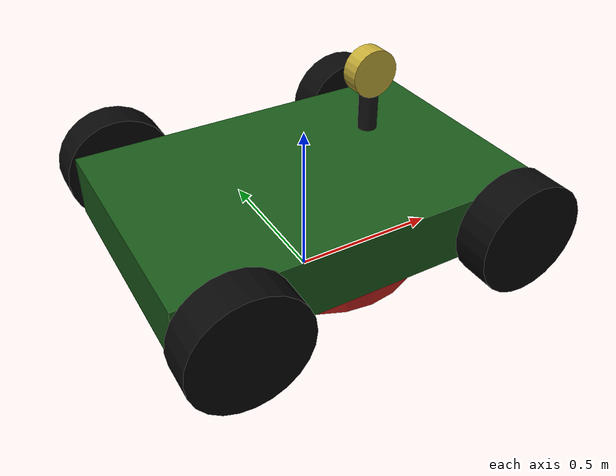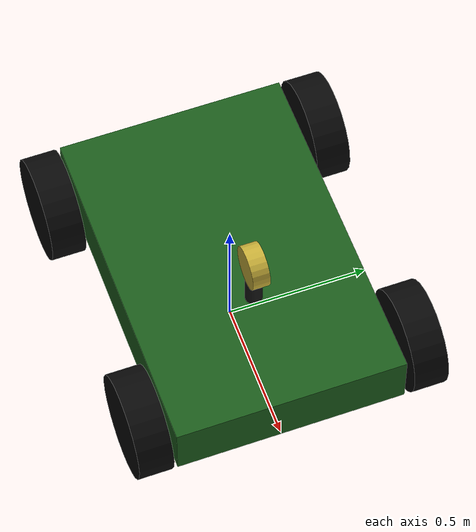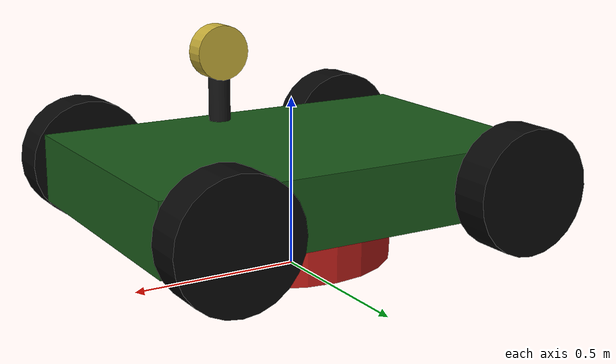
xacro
<?xml version="1.0"?>

<robot xmlns:xacro="http://www.ros.org/wiki/xacro"
       name="automower">

  <!-- Dimensions -->

  <xacro:property name="body_length" value="1.2"/>
  <xacro:property name="body_width"  value="0.8"/>
  <xacro:property name="body_height" value="0.2"/>

  <xacro:property name="wheel_radius" value="0.18"/>
  <xacro:property name="wheel_width"  value="0.12"/>

  <xacro:property name="wheel_x" value="0.45"/>
  <xacro:property name="wheel_y" value="0.48"/>

  <xacro:property name="deck_radius" value="0.33"/>
  <xacro:property name="deck_height" value="0.12"/>
  <xacro:property name="deck_x" value="0.05"/>
  <xacro:property name="deck_z" value="-0.17"/>

  <xacro:property name="blade_radius" value="0.24"/>
  <xacro:property name="blade_width" value="0.05"/>
  <xacro:property name="blade_height" value="0.02"/>

  <xacro:property name="lidar_mount_x" value="0.23"/>
  <xacro:property name="lidar_mount_z" value="0.18"/>
  <xacro:property name="lidar_mast_radius" value="0.03"/>
  <xacro:property name="lidar_mast_height" value="0.16"/>
  <xacro:property name="lidar_radius" value="0.075"/>
  <xacro:property name="lidar_height" value="0.06"/>

  <!-- BASE FOOTPRINT -->

  <link name="base_footprint"/>

  <joint name="base_footprint_joint" type="fixed">
    <parent link="base_footprint"/>
    <child link="base_link"/>
    <!-- Lift the visual body above the ground-aligned footprint frame. -->
    <origin xyz="0 0 0.28" rpy="0 0 0"/>
  </joint>

  <!-- BODY -->

  <link name="base_link">

    <visual>
      <geometry>
        <box size="${body_length} ${body_width} ${body_height}"/>
      </geometry>

      <material name="green">
        <color rgba="0.1 0.35 0.1 1"/>
      </material>
    </visual>

    <collision>
      <geometry>
        <box size="${body_length} ${body_width} ${body_height}"/>
      </geometry>
    </collision>

    <inertial>
      <mass value="25.0"/>
      <origin xyz="0 0 0"/>

      <inertia
        ixx="1.4167"
        ixy="0"
        ixz="0"
        iyy="3.0833"
        iyz="0"
        izz="4.3333"/>
    </inertial>

  </link>

  <!-- Wheel macro -->

  <xacro:macro name="wheel" params="name x y">

    <link name="${name}_wheel">

      <visual>
        <origin xyz="0 0 0" rpy="1.5708 0 0"/>

        <geometry>
          <cylinder
            radius="${wheel_radius}"
            length="${wheel_width}"/>
        </geometry>

        <material name="black">
          <color rgba="0.03 0.03 0.03 1"/>
        </material>
      </visual>

      <collision>
        <origin xyz="0 0 0" rpy="1.5708 0 0"/>

        <geometry>
          <cylinder
            radius="${wheel_radius}"
            length="${wheel_width}"/>
        </geometry>
      </collision>

      <inertial>
        <mass value="2.0"/>
        <origin xyz="0 0 0"/>

        <inertia
          ixx="0.018"
          ixy="0"
          ixz="0"
          iyy="0.0324"
          iyz="0"
          izz="0.018"/>
      </inertial>

    </link>

    <joint name="${name}_wheel_joint" type="continuous">

      <parent link="base_link"/>
      <child link="${name}_wheel"/>

      <origin xyz="${x} ${y} 0" rpy="0 0 0"/>

      <axis xyz="0 1 0"/>

    </joint>

  </xacro:macro>

  <link name="mower_deck_link">
    <visual>
      <geometry>
        <cylinder radius="${deck_radius}" length="${deck_height}"/>
      </geometry>
      <material name="deck_red">
        <color rgba="0.75 0.12 0.10 1"/>
      </material>
    </visual>

    <collision>
      <geometry>
        <cylinder radius="${deck_radius}" length="${deck_height}"/>
      </geometry>
    </collision>
  </link>

  <joint name="mower_deck_joint" type="fixed">
    <parent link="base_link"/>
    <child link="mower_deck_link"/>
    <origin xyz="${deck_x} 0 ${deck_z}" rpy="0 0 0"/>
  </joint>

  <link name="blade_link">
    <visual>
      <geometry>
        <box size="${blade_radius * 2.0} ${blade_width} ${blade_height}"/>
      </geometry>
      <material name="blade_silver">
        <color rgba="0.75 0.75 0.78 1"/>
      </material>
    </visual>
  </link>

  <joint name="blade_joint" type="fixed">
    <parent link="mower_deck_link"/>
    <child link="blade_link"/>
    <origin xyz="0 0 -0.02" rpy="0 0 0"/>
  </joint>

  <link name="lidar_mast_link">
    <visual>
      <origin xyz="0 0 ${lidar_mast_height * 0.5}" rpy="0 0 0"/>
      <geometry>
        <cylinder radius="${lidar_mast_radius}" length="${lidar_mast_height}"/>
      </geometry>
      <material name="mast_black">
        <color rgba="0.08 0.08 0.08 1"/>
      </material>
    </visual>
  </link>

  <joint name="lidar_mast_joint" type="fixed">
    <parent link="base_link"/>
    <child link="lidar_mast_link"/>
    <origin xyz="${lidar_mount_x} 0 ${lidar_mount_z}" rpy="0 0 0"/>
  </joint>

  <link name="lidar_link">
    <visual>
      <geometry>
        <cylinder radius="${lidar_radius}" length="${lidar_height}"/>
      </geometry>
      <material name="lidar_gold">
        <color rgba="0.78 0.68 0.22 1"/>
      </material>
    </visual>
  </link>

  <joint name="lidar_joint" type="fixed">
    <parent link="lidar_mast_link"/>
    <child link="lidar_link"/>
    <origin xyz="0 0 ${lidar_mast_height + lidar_height * 0.5}" rpy="1.5708 0 0"/>
  </joint>

  <!-- FOUR WHEELS -->

  <xacro:wheel
    name="front_left"
    x="${wheel_x}"
    y="${wheel_y}"/>

  <xacro:wheel
    name="front_right"
    x="${wheel_x}"
    y="${-wheel_y}"/>

  <xacro:wheel
    name="rear_left"
    x="${-wheel_x}"
    y="${wheel_y}"/>

  <xacro:wheel
    name="rear_right"
    x="${-wheel_x}"
    y="${-wheel_y}"/>

</robot>
